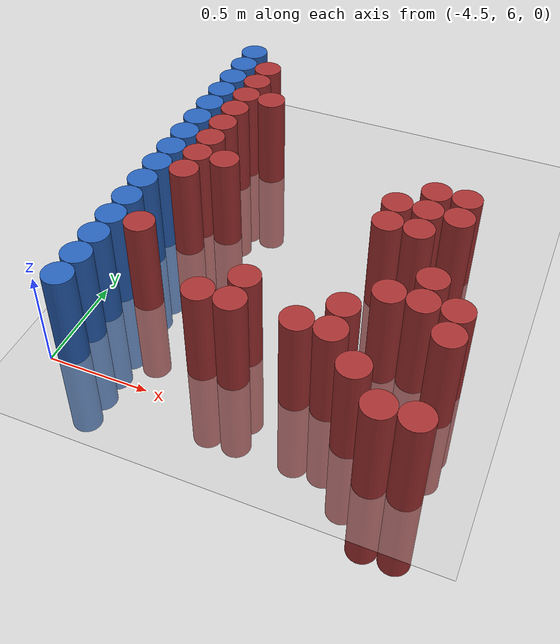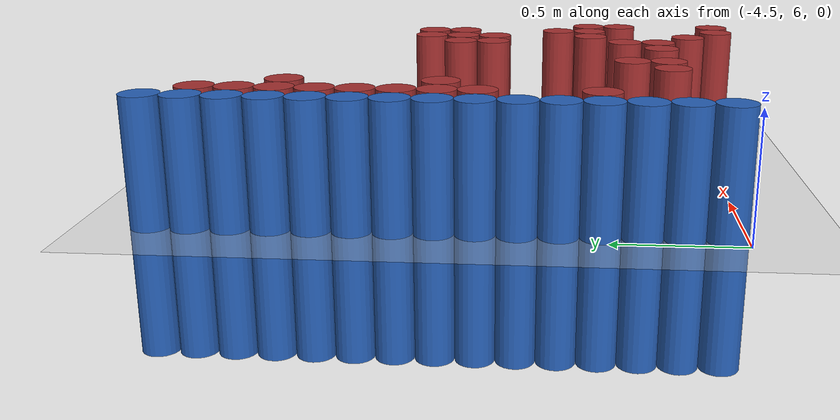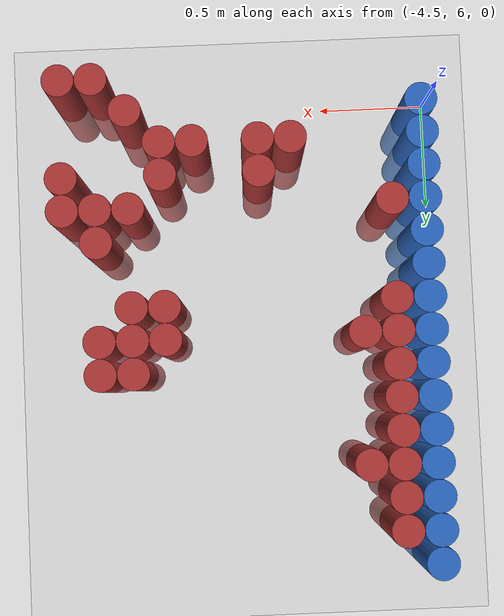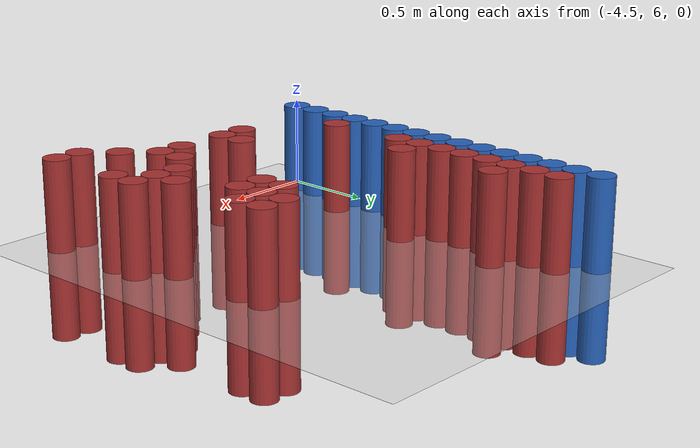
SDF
<sdf version="1.6">
 <world name="default">
  <model name="ground_plane">
   <static>1</static>
   <link name="link">
    <collision name="collision">
     <geometry><plane><normal>0 0 1</normal><size>100 100</size></plane></geometry>
     <surface><friction><ode><mu>100</mu><mu2>50</mu2></ode></friction></surface>
    </collision>
    <visual name="visual">
     <cast_shadows>0</cast_shadows>
     <geometry><plane><normal>0 0 1</normal><size>100 100</size></plane></geometry>
     <material>
      <script><uri>file://media/materials/scripts/gazebo.material</uri><name>Gazebo/Grey</name></script>
     </material>
    </visual>
   </link>
  </model>
  <model name="unit_cylinder_102">
   <static>1</static>
   <pose>-4.425000 6.075000 0.000000 0.000000 0.000000 0.000000</pose>
   <link name="link">
    <inertial>
     <mass>1</mass>
     <inertia><ixx>0.145833</ixx><ixy>0</ixy><ixz>0</ixz><iyy>0.145833</iyy><iyz>0</iyz><izz>0.125</izz></inertia>
    </inertial>
    <collision name="collision">
     <geometry><cylinder><radius>0.075000</radius><length>1</length></cylinder></geometry>
    </collision>
    <visual name="visual">
     <geometry><cylinder><radius>0.075000</radius><length>1</length></cylinder></geometry>
     <material>
      <ambient>0.152000 0.379000 0.720000 1</ambient>
      <diffuse>0.152000 0.379000 0.720000 1</diffuse>
     </material>
     <material>
      <script><name>Gazebo/Grey</name><uri>file://media/materials/scripts/gazebo.material</uri></script>
     </material>
    </visual>
   </link>
  </model>
  <model name="unit_cylinder_103">
   <static>1</static>
   <pose>-4.425000 6.225000 0.000000 0.000000 0.000000 0.000000</pose>
   <link name="link">
    <inertial>
     <mass>1</mass>
     <inertia><ixx>0.145833</ixx><ixy>0</ixy><ixz>0</ixz><iyy>0.145833</iyy><iyz>0</iyz><izz>0.125</izz></inertia>
    </inertial>
    <collision name="collision">
     <geometry><cylinder><radius>0.075000</radius><length>1</length></cylinder></geometry>
    </collision>
    <visual name="visual">
     <geometry><cylinder><radius>0.075000</radius><length>1</length></cylinder></geometry>
     <material>
      <ambient>0.152000 0.379000 0.720000 1</ambient>
      <diffuse>0.152000 0.379000 0.720000 1</diffuse>
     </material>
     <material>
      <script><name>Gazebo/Grey</name><uri>file://media/materials/scripts/gazebo.material</uri></script>
     </material>
    </visual>
   </link>
  </model>
  <model name="unit_cylinder_104">
   <static>1</static>
   <pose>-4.425000 6.375000 0.000000 0.000000 0.000000 0.000000</pose>
   <link name="link">
    <inertial>
     <mass>1</mass>
     <inertia><ixx>0.145833</ixx><ixy>0</ixy><ixz>0</ixz><iyy>0.145833</iyy><iyz>0</iyz><izz>0.125</izz></inertia>
    </inertial>
    <collision name="collision">
     <geometry><cylinder><radius>0.075000</radius><length>1</length></cylinder></geometry>
    </collision>
    <visual name="visual">
     <geometry><cylinder><radius>0.075000</radius><length>1</length></cylinder></geometry>
     <material>
      <ambient>0.152000 0.379000 0.720000 1</ambient>
      <diffuse>0.152000 0.379000 0.720000 1</diffuse>
     </material>
     <material>
      <script><name>Gazebo/Grey</name><uri>file://media/materials/scripts/gazebo.material</uri></script>
     </material>
    </visual>
   </link>
  </model>
  <model name="unit_cylinder_105">
   <static>1</static>
   <pose>-4.425000 6.525000 0.000000 0.000000 0.000000 0.000000</pose>
   <link name="link">
    <inertial>
     <mass>1</mass>
     <inertia><ixx>0.145833</ixx><ixy>0</ixy><ixz>0</ixz><iyy>0.145833</iyy><iyz>0</iyz><izz>0.125</izz></inertia>
    </inertial>
    <collision name="collision">
     <geometry><cylinder><radius>0.075000</radius><length>1</length></cylinder></geometry>
    </collision>
    <visual name="visual">
     <geometry><cylinder><radius>0.075000</radius><length>1</length></cylinder></geometry>
     <material>
      <ambient>0.152000 0.379000 0.720000 1</ambient>
      <diffuse>0.152000 0.379000 0.720000 1</diffuse>
     </material>
     <material>
      <script><name>Gazebo/Grey</name><uri>file://media/materials/scripts/gazebo.material</uri></script>
     </material>
    </visual>
   </link>
  </model>
  <model name="unit_cylinder_106">
   <static>1</static>
   <pose>-4.425000 6.675000 0.000000 0.000000 0.000000 0.000000</pose>
   <link name="link">
    <inertial>
     <mass>1</mass>
     <inertia><ixx>0.145833</ixx><ixy>0</ixy><ixz>0</ixz><iyy>0.145833</iyy><iyz>0</iyz><izz>0.125</izz></inertia>
    </inertial>
    <collision name="collision">
     <geometry><cylinder><radius>0.075000</radius><length>1</length></cylinder></geometry>
    </collision>
    <visual name="visual">
     <geometry><cylinder><radius>0.075000</radius><length>1</length></cylinder></geometry>
     <material>
      <ambient>0.152000 0.379000 0.720000 1</ambient>
      <diffuse>0.152000 0.379000 0.720000 1</diffuse>
     </material>
     <material>
      <script><name>Gazebo/Grey</name><uri>file://media/materials/scripts/gazebo.material</uri></script>
     </material>
    </visual>
   </link>
  </model>
  <model name="unit_cylinder_107">
   <static>1</static>
   <pose>-4.425000 6.825000 0.000000 0.000000 0.000000 0.000000</pose>
   <link name="link">
    <inertial>
     <mass>1</mass>
     <inertia><ixx>0.145833</ixx><ixy>0</ixy><ixz>0</ixz><iyy>0.145833</iyy><iyz>0</iyz><izz>0.125</izz></inertia>
    </inertial>
    <collision name="collision">
     <geometry><cylinder><radius>0.075000</radius><length>1</length></cylinder></geometry>
    </collision>
    <visual name="visual">
     <geometry><cylinder><radius>0.075000</radius><length>1</length></cylinder></geometry>
     <material>
      <ambient>0.152000 0.379000 0.720000 1</ambient>
      <diffuse>0.152000 0.379000 0.720000 1</diffuse>
     </material>
     <material>
      <script><name>Gazebo/Grey</name><uri>file://media/materials/scripts/gazebo.material</uri></script>
     </material>
    </visual>
   </link>
  </model>
  <model name="unit_cylinder_108">
   <static>1</static>
   <pose>-4.425000 6.975000 0.000000 0.000000 0.000000 0.000000</pose>
   <link name="link">
    <inertial>
     <mass>1</mass>
     <inertia><ixx>0.145833</ixx><ixy>0</ixy><ixz>0</ixz><iyy>0.145833</iyy><iyz>0</iyz><izz>0.125</izz></inertia>
    </inertial>
    <collision name="collision">
     <geometry><cylinder><radius>0.075000</radius><length>1</length></cylinder></geometry>
    </collision>
    <visual name="visual">
     <geometry><cylinder><radius>0.075000</radius><length>1</length></cylinder></geometry>
     <material>
      <ambient>0.152000 0.379000 0.720000 1</ambient>
      <diffuse>0.152000 0.379000 0.720000 1</diffuse>
     </material>
     <material>
      <script><name>Gazebo/Grey</name><uri>file://media/materials/scripts/gazebo.material</uri></script>
     </material>
    </visual>
   </link>
  </model>
  <model name="unit_cylinder_109">
   <static>1</static>
   <pose>-4.425000 7.125000 0.000000 0.000000 0.000000 0.000000</pose>
   <link name="link">
    <inertial>
     <mass>1</mass>
     <inertia><ixx>0.145833</ixx><ixy>0</ixy><ixz>0</ixz><iyy>0.145833</iyy><iyz>0</iyz><izz>0.125</izz></inertia>
    </inertial>
    <collision name="collision">
     <geometry><cylinder><radius>0.075000</radius><length>1</length></cylinder></geometry>
    </collision>
    <visual name="visual">
     <geometry><cylinder><radius>0.075000</radius><length>1</length></cylinder></geometry>
     <material>
      <ambient>0.152000 0.379000 0.720000 1</ambient>
      <diffuse>0.152000 0.379000 0.720000 1</diffuse>
     </material>
     <material>
      <script><name>Gazebo/Grey</name><uri>file://media/materials/scripts/gazebo.material</uri></script>
     </material>
    </visual>
   </link>
  </model>
  <model name="unit_cylinder_110">
   <static>1</static>
   <pose>-4.425000 7.275000 0.000000 0.000000 0.000000 0.000000</pose>
   <link name="link">
    <inertial>
     <mass>1</mass>
     <inertia><ixx>0.145833</ixx><ixy>0</ixy><ixz>0</ixz><iyy>0.145833</iyy><iyz>0</iyz><izz>0.125</izz></inertia>
    </inertial>
    <collision name="collision">
     <geometry><cylinder><radius>0.075000</radius><length>1</length></cylinder></geometry>
    </collision>
    <visual name="visual">
     <geometry><cylinder><radius>0.075000</radius><length>1</length></cylinder></geometry>
     <material>
      <ambient>0.152000 0.379000 0.720000 1</ambient>
      <diffuse>0.152000 0.379000 0.720000 1</diffuse>
     </material>
     <material>
      <script><name>Gazebo/Grey</name><uri>file://media/materials/scripts/gazebo.material</uri></script>
     </material>
    </visual>
   </link>
  </model>
  <model name="unit_cylinder_111">
   <static>1</static>
   <pose>-4.425000 7.425000 0.000000 0.000000 0.000000 0.000000</pose>
   <link name="link">
    <inertial>
     <mass>1</mass>
     <inertia><ixx>0.145833</ixx><ixy>0</ixy><ixz>0</ixz><iyy>0.145833</iyy><iyz>0</iyz><izz>0.125</izz></inertia>
    </inertial>
    <collision name="collision">
     <geometry><cylinder><radius>0.075000</radius><length>1</length></cylinder></geometry>
    </collision>
    <visual name="visual">
     <geometry><cylinder><radius>0.075000</radius><length>1</length></cylinder></geometry>
     <material>
      <ambient>0.152000 0.379000 0.720000 1</ambient>
      <diffuse>0.152000 0.379000 0.720000 1</diffuse>
     </material>
     <material>
      <script><name>Gazebo/Grey</name><uri>file://media/materials/scripts/gazebo.material</uri></script>
     </material>
    </visual>
   </link>
  </model>
  <model name="unit_cylinder_112">
   <static>1</static>
   <pose>-4.425000 7.575000 0.000000 0.000000 0.000000 0.000000</pose>
   <link name="link">
    <inertial>
     <mass>1</mass>
     <inertia><ixx>0.145833</ixx><ixy>0</ixy><ixz>0</ixz><iyy>0.145833</iyy><iyz>0</iyz><izz>0.125</izz></inertia>
    </inertial>
    <collision name="collision">
     <geometry><cylinder><radius>0.075000</radius><length>1</length></cylinder></geometry>
    </collision>
    <visual name="visual">
     <geometry><cylinder><radius>0.075000</radius><length>1</length></cylinder></geometry>
     <material>
      <ambient>0.152000 0.379000 0.720000 1</ambient>
      <diffuse>0.152000 0.379000 0.720000 1</diffuse>
     </material>
     <material>
      <script><name>Gazebo/Grey</name><uri>file://media/materials/scripts/gazebo.material</uri></script>
     </material>
    </visual>
   </link>
  </model>
  <model name="unit_cylinder_113">
   <static>1</static>
   <pose>-4.425000 7.725000 0.000000 0.000000 0.000000 0.000000</pose>
   <link name="link">
    <inertial>
     <mass>1</mass>
     <inertia><ixx>0.145833</ixx><ixy>0</ixy><ixz>0</ixz><iyy>0.145833</iyy><iyz>0</iyz><izz>0.125</izz></inertia>
    </inertial>
    <collision name="collision">
     <geometry><cylinder><radius>0.075000</radius><length>1</length></cylinder></geometry>
    </collision>
    <visual name="visual">
     <geometry><cylinder><radius>0.075000</radius><length>1</length></cylinder></geometry>
     <material>
      <ambient>0.152000 0.379000 0.720000 1</ambient>
      <diffuse>0.152000 0.379000 0.720000 1</diffuse>
     </material>
     <material>
      <script><name>Gazebo/Grey</name><uri>file://media/materials/scripts/gazebo.material</uri></script>
     </material>
    </visual>
   </link>
  </model>
  <model name="unit_cylinder_114">
   <static>1</static>
   <pose>-4.425000 7.875000 0.000000 0.000000 0.000000 0.000000</pose>
   <link name="link">
    <inertial>
     <mass>1</mass>
     <inertia><ixx>0.145833</ixx><ixy>0</ixy><ixz>0</ixz><iyy>0.145833</iyy><iyz>0</iyz><izz>0.125</izz></inertia>
    </inertial>
    <collision name="collision">
     <geometry><cylinder><radius>0.075000</radius><length>1</length></cylinder></geometry>
    </collision>
    <visual name="visual">
     <geometry><cylinder><radius>0.075000</radius><length>1</length></cylinder></geometry>
     <material>
      <ambient>0.152000 0.379000 0.720000 1</ambient>
      <diffuse>0.152000 0.379000 0.720000 1</diffuse>
     </material>
     <material>
      <script><name>Gazebo/Grey</name><uri>file://media/materials/scripts/gazebo.material</uri></script>
     </material>
    </visual>
   </link>
  </model>
  <model name="unit_cylinder_115">
   <static>1</static>
   <pose>-4.425000 8.025000 0.000000 0.000000 0.000000 0.000000</pose>
   <link name="link">
    <inertial>
     <mass>1</mass>
     <inertia><ixx>0.145833</ixx><ixy>0</ixy><ixz>0</ixz><iyy>0.145833</iyy><iyz>0</iyz><izz>0.125</izz></inertia>
    </inertial>
    <collision name="collision">
     <geometry><cylinder><radius>0.075000</radius><length>1</length></cylinder></geometry>
    </collision>
    <visual name="visual">
     <geometry><cylinder><radius>0.075000</radius><length>1</length></cylinder></geometry>
     <material>
      <ambient>0.152000 0.379000 0.720000 1</ambient>
      <diffuse>0.152000 0.379000 0.720000 1</diffuse>
     </material>
     <material>
      <script><name>Gazebo/Grey</name><uri>file://media/materials/scripts/gazebo.material</uri></script>
     </material>
    </visual>
   </link>
  </model>
  <model name="unit_cylinder_116">
   <static>1</static>
   <pose>-4.425000 8.175000 0.000000 0.000000 0.000000 0.000000</pose>
   <link name="link">
    <inertial>
     <mass>1</mass>
     <inertia><ixx>0.145833</ixx><ixy>0</ixy><ixz>0</ixz><iyy>0.145833</iyy><iyz>0</iyz><izz>0.125</izz></inertia>
    </inertial>
    <collision name="collision">
     <geometry><cylinder><radius>0.075000</radius><length>1</length></cylinder></geometry>
    </collision>
    <visual name="visual">
     <geometry><cylinder><radius>0.075000</radius><length>1</length></cylinder></geometry>
     <material>
      <ambient>0.152000 0.379000 0.720000 1</ambient>
      <diffuse>0.152000 0.379000 0.720000 1</diffuse>
     </material>
     <material>
      <script><name>Gazebo/Grey</name><uri>file://media/materials/scripts/gazebo.material</uri></script>
     </material>
    </visual>
   </link>
  </model>
  <model name="unit_cylinder_131">
   <static>1</static>
   <pose>-4.275000 6.525000 0.000000 0.000000 0.000000 0.000000</pose>
   <link name="link">
    <inertial>
     <mass>1</mass>
     <inertia><ixx>0.145833</ixx><ixy>0</ixy><ixz>0</ixz><iyy>0.145833</iyy><iyz>0</iyz><izz>0.125</izz></inertia>
    </inertial>
    <collision name="collision">
     <geometry><cylinder><radius>0.075000</radius><length>1</length></cylinder></geometry>
    </collision>
    <visual name="visual">
     <geometry><cylinder><radius>0.075000</radius><length>1</length></cylinder></geometry>
     <material>
      <ambient>0.648000 0.192000 0.192000 1</ambient>
      <diffuse>0.648000 0.192000 0.192000 1</diffuse>
     </material>
     <material>
      <script><name>Gazebo/Grey</name><uri>file://media/materials/scripts/gazebo.material</uri></script>
     </material>
    </visual>
   </link>
  </model>
  <model name="unit_cylinder_132">
   <static>1</static>
   <pose>-4.275000 6.975000 0.000000 0.000000 0.000000 0.000000</pose>
   <link name="link">
    <inertial>
     <mass>1</mass>
     <inertia><ixx>0.145833</ixx><ixy>0</ixy><ixz>0</ixz><iyy>0.145833</iyy><iyz>0</iyz><izz>0.125</izz></inertia>
    </inertial>
    <collision name="collision">
     <geometry><cylinder><radius>0.075000</radius><length>1</length></cylinder></geometry>
    </collision>
    <visual name="visual">
     <geometry><cylinder><radius>0.075000</radius><length>1</length></cylinder></geometry>
     <material>
      <ambient>0.648000 0.192000 0.192000 1</ambient>
      <diffuse>0.648000 0.192000 0.192000 1</diffuse>
     </material>
     <material>
      <script><name>Gazebo/Grey</name><uri>file://media/materials/scripts/gazebo.material</uri></script>
     </material>
    </visual>
   </link>
  </model>
  <model name="unit_cylinder_133">
   <static>1</static>
   <pose>-4.275000 7.125000 0.000000 0.000000 0.000000 0.000000</pose>
   <link name="link">
    <inertial>
     <mass>1</mass>
     <inertia><ixx>0.145833</ixx><ixy>0</ixy><ixz>0</ixz><iyy>0.145833</iyy><iyz>0</iyz><izz>0.125</izz></inertia>
    </inertial>
    <collision name="collision">
     <geometry><cylinder><radius>0.075000</radius><length>1</length></cylinder></geometry>
    </collision>
    <visual name="visual">
     <geometry><cylinder><radius>0.075000</radius><length>1</length></cylinder></geometry>
     <material>
      <ambient>0.648000 0.192000 0.192000 1</ambient>
      <diffuse>0.648000 0.192000 0.192000 1</diffuse>
     </material>
     <material>
      <script><name>Gazebo/Grey</name><uri>file://media/materials/scripts/gazebo.material</uri></script>
     </material>
    </visual>
   </link>
  </model>
  <model name="unit_cylinder_134">
   <static>1</static>
   <pose>-4.275000 7.275000 0.000000 0.000000 0.000000 0.000000</pose>
   <link name="link">
    <inertial>
     <mass>1</mass>
     <inertia><ixx>0.145833</ixx><ixy>0</ixy><ixz>0</ixz><iyy>0.145833</iyy><iyz>0</iyz><izz>0.125</izz></inertia>
    </inertial>
    <collision name="collision">
     <geometry><cylinder><radius>0.075000</radius><length>1</length></cylinder></geometry>
    </collision>
    <visual name="visual">
     <geometry><cylinder><radius>0.075000</radius><length>1</length></cylinder></geometry>
     <material>
      <ambient>0.648000 0.192000 0.192000 1</ambient>
      <diffuse>0.648000 0.192000 0.192000 1</diffuse>
     </material>
     <material>
      <script><name>Gazebo/Grey</name><uri>file://media/materials/scripts/gazebo.material</uri></script>
     </material>
    </visual>
   </link>
  </model>
  <model name="unit_cylinder_135">
   <static>1</static>
   <pose>-4.275000 7.425000 0.000000 0.000000 0.000000 0.000000</pose>
   <link name="link">
    <inertial>
     <mass>1</mass>
     <inertia><ixx>0.145833</ixx><ixy>0</ixy><ixz>0</ixz><iyy>0.145833</iyy><iyz>0</iyz><izz>0.125</izz></inertia>
    </inertial>
    <collision name="collision">
     <geometry><cylinder><radius>0.075000</radius><length>1</length></cylinder></geometry>
    </collision>
    <visual name="visual">
     <geometry><cylinder><radius>0.075000</radius><length>1</length></cylinder></geometry>
     <material>
      <ambient>0.648000 0.192000 0.192000 1</ambient>
      <diffuse>0.648000 0.192000 0.192000 1</diffuse>
     </material>
     <material>
      <script><name>Gazebo/Grey</name><uri>file://media/materials/scripts/gazebo.material</uri></script>
     </material>
    </visual>
   </link>
  </model>
  <model name="unit_cylinder_136">
   <static>1</static>
   <pose>-4.275000 7.575000 0.000000 0.000000 0.000000 0.000000</pose>
   <link name="link">
    <inertial>
     <mass>1</mass>
     <inertia><ixx>0.145833</ixx><ixy>0</ixy><ixz>0</ixz><iyy>0.145833</iyy><iyz>0</iyz><izz>0.125</izz></inertia>
    </inertial>
    <collision name="collision">
     <geometry><cylinder><radius>0.075000</radius><length>1</length></cylinder></geometry>
    </collision>
    <visual name="visual">
     <geometry><cylinder><radius>0.075000</radius><length>1</length></cylinder></geometry>
     <material>
      <ambient>0.648000 0.192000 0.192000 1</ambient>
      <diffuse>0.648000 0.192000 0.192000 1</diffuse>
     </material>
     <material>
      <script><name>Gazebo/Grey</name><uri>file://media/materials/scripts/gazebo.material</uri></script>
     </material>
    </visual>
   </link>
  </model>
  <model name="unit_cylinder_137">
   <static>1</static>
   <pose>-4.275000 7.725000 0.000000 0.000000 0.000000 0.000000</pose>
   <link name="link">
    <inertial>
     <mass>1</mass>
     <inertia><ixx>0.145833</ixx><ixy>0</ixy><ixz>0</ixz><iyy>0.145833</iyy><iyz>0</iyz><izz>0.125</izz></inertia>
    </inertial>
    <collision name="collision">
     <geometry><cylinder><radius>0.075000</radius><length>1</length></cylinder></geometry>
    </collision>
    <visual name="visual">
     <geometry><cylinder><radius>0.075000</radius><length>1</length></cylinder></geometry>
     <material>
      <ambient>0.648000 0.192000 0.192000 1</ambient>
      <diffuse>0.648000 0.192000 0.192000 1</diffuse>
     </material>
     <material>
      <script><name>Gazebo/Grey</name><uri>file://media/materials/scripts/gazebo.material</uri></script>
     </material>
    </visual>
   </link>
  </model>
  <model name="unit_cylinder_138">
   <static>1</static>
   <pose>-4.275000 7.875000 0.000000 0.000000 0.000000 0.000000</pose>
   <link name="link">
    <inertial>
     <mass>1</mass>
     <inertia><ixx>0.145833</ixx><ixy>0</ixy><ixz>0</ixz><iyy>0.145833</iyy><iyz>0</iyz><izz>0.125</izz></inertia>
    </inertial>
    <collision name="collision">
     <geometry><cylinder><radius>0.075000</radius><length>1</length></cylinder></geometry>
    </collision>
    <visual name="visual">
     <geometry><cylinder><radius>0.075000</radius><length>1</length></cylinder></geometry>
     <material>
      <ambient>0.648000 0.192000 0.192000 1</ambient>
      <diffuse>0.648000 0.192000 0.192000 1</diffuse>
     </material>
     <material>
      <script><name>Gazebo/Grey</name><uri>file://media/materials/scripts/gazebo.material</uri></script>
     </material>
    </visual>
   </link>
  </model>
  <model name="unit_cylinder_139">
   <static>1</static>
   <pose>-4.275000 8.025000 0.000000 0.000000 0.000000 0.000000</pose>
   <link name="link">
    <inertial>
     <mass>1</mass>
     <inertia><ixx>0.145833</ixx><ixy>0</ixy><ixz>0</ixz><iyy>0.145833</iyy><iyz>0</iyz><izz>0.125</izz></inertia>
    </inertial>
    <collision name="collision">
     <geometry><cylinder><radius>0.075000</radius><length>1</length></cylinder></geometry>
    </collision>
    <visual name="visual">
     <geometry><cylinder><radius>0.075000</radius><length>1</length></cylinder></geometry>
     <material>
      <ambient>0.648000 0.192000 0.192000 1</ambient>
      <diffuse>0.648000 0.192000 0.192000 1</diffuse>
     </material>
     <material>
      <script><name>Gazebo/Grey</name><uri>file://media/materials/scripts/gazebo.material</uri></script>
     </material>
    </visual>
   </link>
  </model>
  <model name="unit_cylinder_149">
   <static>1</static>
   <pose>-4.125000 7.125000 0.000000 0.000000 0.000000 0.000000</pose>
   <link name="link">
    <inertial>
     <mass>1</mass>
     <inertia><ixx>0.145833</ixx><ixy>0</ixy><ixz>0</ixz><iyy>0.145833</iyy><iyz>0</iyz><izz>0.125</izz></inertia>
    </inertial>
    <collision name="collision">
     <geometry><cylinder><radius>0.075000</radius><length>1</length></cylinder></geometry>
    </collision>
    <visual name="visual">
     <geometry><cylinder><radius>0.075000</radius><length>1</length></cylinder></geometry>
     <material>
      <ambient>0.648000 0.192000 0.192000 1</ambient>
      <diffuse>0.648000 0.192000 0.192000 1</diffuse>
     </material>
     <material>
      <script><name>Gazebo/Grey</name><uri>file://media/materials/scripts/gazebo.material</uri></script>
     </material>
    </visual>
   </link>
  </model>
  <model name="unit_cylinder_150">
   <static>1</static>
   <pose>-4.125000 7.725000 0.000000 0.000000 0.000000 0.000000</pose>
   <link name="link">
    <inertial>
     <mass>1</mass>
     <inertia><ixx>0.145833</ixx><ixy>0</ixy><ixz>0</ixz><iyy>0.145833</iyy><iyz>0</iyz><izz>0.125</izz></inertia>
    </inertial>
    <collision name="collision">
     <geometry><cylinder><radius>0.075000</radius><length>1</length></cylinder></geometry>
    </collision>
    <visual name="visual">
     <geometry><cylinder><radius>0.075000</radius><length>1</length></cylinder></geometry>
     <material>
      <ambient>0.648000 0.192000 0.192000 1</ambient>
      <diffuse>0.648000 0.192000 0.192000 1</diffuse>
     </material>
     <material>
      <script><name>Gazebo/Grey</name><uri>file://media/materials/scripts/gazebo.material</uri></script>
     </material>
    </visual>
   </link>
  </model>
  <model name="unit_cylinder_158">
   <static>1</static>
   <pose>-3.825000 6.225000 0.000000 0.000000 0.000000 0.000000</pose>
   <link name="link">
    <inertial>
     <mass>1</mass>
     <inertia><ixx>0.145833</ixx><ixy>0</ixy><ixz>0</ixz><iyy>0.145833</iyy><iyz>0</iyz><izz>0.125</izz></inertia>
    </inertial>
    <collision name="collision">
     <geometry><cylinder><radius>0.075000</radius><length>1</length></cylinder></geometry>
    </collision>
    <visual name="visual">
     <geometry><cylinder><radius>0.075000</radius><length>1</length></cylinder></geometry>
     <material>
      <ambient>0.648000 0.192000 0.192000 1</ambient>
      <diffuse>0.648000 0.192000 0.192000 1</diffuse>
     </material>
     <material>
      <script><name>Gazebo/Grey</name><uri>file://media/materials/scripts/gazebo.material</uri></script>
     </material>
    </visual>
   </link>
  </model>
  <model name="unit_cylinder_165">
   <static>1</static>
   <pose>-3.675000 6.225000 0.000000 0.000000 0.000000 0.000000</pose>
   <link name="link">
    <inertial>
     <mass>1</mass>
     <inertia><ixx>0.145833</ixx><ixy>0</ixy><ixz>0</ixz><iyy>0.145833</iyy><iyz>0</iyz><izz>0.125</izz></inertia>
    </inertial>
    <collision name="collision">
     <geometry><cylinder><radius>0.075000</radius><length>1</length></cylinder></geometry>
    </collision>
    <visual name="visual">
     <geometry><cylinder><radius>0.075000</radius><length>1</length></cylinder></geometry>
     <material>
      <ambient>0.648000 0.192000 0.192000 1</ambient>
      <diffuse>0.648000 0.192000 0.192000 1</diffuse>
     </material>
     <material>
      <script><name>Gazebo/Grey</name><uri>file://media/materials/scripts/gazebo.material</uri></script>
     </material>
    </visual>
   </link>
  </model>
  <model name="unit_cylinder_166">
   <static>1</static>
   <pose>-3.675000 6.375000 0.000000 0.000000 0.000000 0.000000</pose>
   <link name="link">
    <inertial>
     <mass>1</mass>
     <inertia><ixx>0.145833</ixx><ixy>0</ixy><ixz>0</ixz><iyy>0.145833</iyy><iyz>0</iyz><izz>0.125</izz></inertia>
    </inertial>
    <collision name="collision">
     <geometry><cylinder><radius>0.075000</radius><length>1</length></cylinder></geometry>
    </collision>
    <visual name="visual">
     <geometry><cylinder><radius>0.075000</radius><length>1</length></cylinder></geometry>
     <material>
      <ambient>0.648000 0.192000 0.192000 1</ambient>
      <diffuse>0.648000 0.192000 0.192000 1</diffuse>
     </material>
     <material>
      <script><name>Gazebo/Grey</name><uri>file://media/materials/scripts/gazebo.material</uri></script>
     </material>
    </visual>
   </link>
  </model>
  <model name="unit_cylinder_182">
   <static>1</static>
   <pose>-3.375000 6.225000 0.000000 0.000000 0.000000 0.000000</pose>
   <link name="link">
    <inertial>
     <mass>1</mass>
     <inertia><ixx>0.145833</ixx><ixy>0</ixy><ixz>0</ixz><iyy>0.145833</iyy><iyz>0</iyz><izz>0.125</izz></inertia>
    </inertial>
    <collision name="collision">
     <geometry><cylinder><radius>0.075000</radius><length>1</length></cylinder></geometry>
    </collision>
    <visual name="visual">
     <geometry><cylinder><radius>0.075000</radius><length>1</length></cylinder></geometry>
     <material>
      <ambient>0.648000 0.192000 0.192000 1</ambient>
      <diffuse>0.648000 0.192000 0.192000 1</diffuse>
     </material>
     <material>
      <script><name>Gazebo/Grey</name><uri>file://media/materials/scripts/gazebo.material</uri></script>
     </material>
    </visual>
   </link>
  </model>
  <model name="unit_cylinder_191">
   <static>1</static>
   <pose>-3.225000 6.225000 0.000000 0.000000 0.000000 0.000000</pose>
   <link name="link">
    <inertial>
     <mass>1</mass>
     <inertia><ixx>0.145833</ixx><ixy>0</ixy><ixz>0</ixz><iyy>0.145833</iyy><iyz>0</iyz><izz>0.125</izz></inertia>
    </inertial>
    <collision name="collision">
     <geometry><cylinder><radius>0.075000</radius><length>1</length></cylinder></geometry>
    </collision>
    <visual name="visual">
     <geometry><cylinder><radius>0.075000</radius><length>1</length></cylinder></geometry>
     <material>
      <ambient>0.648000 0.192000 0.192000 1</ambient>
      <diffuse>0.648000 0.192000 0.192000 1</diffuse>
     </material>
     <material>
      <script><name>Gazebo/Grey</name><uri>file://media/materials/scripts/gazebo.material</uri></script>
     </material>
    </visual>
   </link>
  </model>
  <model name="unit_cylinder_192">
   <static>1</static>
   <pose>-3.225000 6.375000 0.000000 0.000000 0.000000 0.000000</pose>
   <link name="link">
    <inertial>
     <mass>1</mass>
     <inertia><ixx>0.145833</ixx><ixy>0</ixy><ixz>0</ixz><iyy>0.145833</iyy><iyz>0</iyz><izz>0.125</izz></inertia>
    </inertial>
    <collision name="collision">
     <geometry><cylinder><radius>0.075000</radius><length>1</length></cylinder></geometry>
    </collision>
    <visual name="visual">
     <geometry><cylinder><radius>0.075000</radius><length>1</length></cylinder></geometry>
     <material>
      <ambient>0.648000 0.192000 0.192000 1</ambient>
      <diffuse>0.648000 0.192000 0.192000 1</diffuse>
     </material>
     <material>
      <script><name>Gazebo/Grey</name><uri>file://media/materials/scripts/gazebo.material</uri></script>
     </material>
    </visual>
   </link>
  </model>
  <model name="unit_cylinder_193">
   <static>1</static>
   <pose>-3.225000 6.975000 0.000000 0.000000 0.000000 0.000000</pose>
   <link name="link">
    <inertial>
     <mass>1</mass>
     <inertia><ixx>0.145833</ixx><ixy>0</ixy><ixz>0</ixz><iyy>0.145833</iyy><iyz>0</iyz><izz>0.125</izz></inertia>
    </inertial>
    <collision name="collision">
     <geometry><cylinder><radius>0.075000</radius><length>1</length></cylinder></geometry>
    </collision>
    <visual name="visual">
     <geometry><cylinder><radius>0.075000</radius><length>1</length></cylinder></geometry>
     <material>
      <ambient>0.648000 0.192000 0.192000 1</ambient>
      <diffuse>0.648000 0.192000 0.192000 1</diffuse>
     </material>
     <material>
      <script><name>Gazebo/Grey</name><uri>file://media/materials/scripts/gazebo.material</uri></script>
     </material>
    </visual>
   </link>
  </model>
  <model name="unit_cylinder_194">
   <static>1</static>
   <pose>-3.225000 7.125000 0.000000 0.000000 0.000000 0.000000</pose>
   <link name="link">
    <inertial>
     <mass>1</mass>
     <inertia><ixx>0.145833</ixx><ixy>0</ixy><ixz>0</ixz><iyy>0.145833</iyy><iyz>0</iyz><izz>0.125</izz></inertia>
    </inertial>
    <collision name="collision">
     <geometry><cylinder><radius>0.075000</radius><length>1</length></cylinder></geometry>
    </collision>
    <visual name="visual">
     <geometry><cylinder><radius>0.075000</radius><length>1</length></cylinder></geometry>
     <material>
      <ambient>0.648000 0.192000 0.192000 1</ambient>
      <diffuse>0.648000 0.192000 0.192000 1</diffuse>
     </material>
     <material>
      <script><name>Gazebo/Grey</name><uri>file://media/materials/scripts/gazebo.material</uri></script>
     </material>
    </visual>
   </link>
  </model>
  <model name="unit_cylinder_204">
   <static>1</static>
   <pose>-3.075000 6.075000 0.000000 0.000000 0.000000 0.000000</pose>
   <link name="link">
    <inertial>
     <mass>1</mass>
     <inertia><ixx>0.145833</ixx><ixy>0</ixy><ixz>0</ixz><iyy>0.145833</iyy><iyz>0</iyz><izz>0.125</izz></inertia>
    </inertial>
    <collision name="collision">
     <geometry><cylinder><radius>0.075000</radius><length>1</length></cylinder></geometry>
    </collision>
    <visual name="visual">
     <geometry><cylinder><radius>0.075000</radius><length>1</length></cylinder></geometry>
     <material>
      <ambient>0.648000 0.192000 0.192000 1</ambient>
      <diffuse>0.648000 0.192000 0.192000 1</diffuse>
     </material>
     <material>
      <script><name>Gazebo/Grey</name><uri>file://media/materials/scripts/gazebo.material</uri></script>
     </material>
    </visual>
   </link>
  </model>
  <model name="unit_cylinder_205">
   <static>1</static>
   <pose>-3.075000 6.525000 0.000000 0.000000 0.000000 0.000000</pose>
   <link name="link">
    <inertial>
     <mass>1</mass>
     <inertia><ixx>0.145833</ixx><ixy>0</ixy><ixz>0</ixz><iyy>0.145833</iyy><iyz>0</iyz><izz>0.125</izz></inertia>
    </inertial>
    <collision name="collision">
     <geometry><cylinder><radius>0.075000</radius><length>1</length></cylinder></geometry>
    </collision>
    <visual name="visual">
     <geometry><cylinder><radius>0.075000</radius><length>1</length></cylinder></geometry>
     <material>
      <ambient>0.648000 0.192000 0.192000 1</ambient>
      <diffuse>0.648000 0.192000 0.192000 1</diffuse>
     </material>
     <material>
      <script><name>Gazebo/Grey</name><uri>file://media/materials/scripts/gazebo.material</uri></script>
     </material>
    </visual>
   </link>
  </model>
  <model name="unit_cylinder_206">
   <static>1</static>
   <pose>-3.075000 6.975000 0.000000 0.000000 0.000000 0.000000</pose>
   <link name="link">
    <inertial>
     <mass>1</mass>
     <inertia><ixx>0.145833</ixx><ixy>0</ixy><ixz>0</ixz><iyy>0.145833</iyy><iyz>0</iyz><izz>0.125</izz></inertia>
    </inertial>
    <collision name="collision">
     <geometry><cylinder><radius>0.075000</radius><length>1</length></cylinder></geometry>
    </collision>
    <visual name="visual">
     <geometry><cylinder><radius>0.075000</radius><length>1</length></cylinder></geometry>
     <material>
      <ambient>0.648000 0.192000 0.192000 1</ambient>
      <diffuse>0.648000 0.192000 0.192000 1</diffuse>
     </material>
     <material>
      <script><name>Gazebo/Grey</name><uri>file://media/materials/scripts/gazebo.material</uri></script>
     </material>
    </visual>
   </link>
  </model>
  <model name="unit_cylinder_207">
   <static>1</static>
   <pose>-3.075000 7.125000 0.000000 0.000000 0.000000 0.000000</pose>
   <link name="link">
    <inertial>
     <mass>1</mass>
     <inertia><ixx>0.145833</ixx><ixy>0</ixy><ixz>0</ixz><iyy>0.145833</iyy><iyz>0</iyz><izz>0.125</izz></inertia>
    </inertial>
    <collision name="collision">
     <geometry><cylinder><radius>0.075000</radius><length>1</length></cylinder></geometry>
    </collision>
    <visual name="visual">
     <geometry><cylinder><radius>0.075000</radius><length>1</length></cylinder></geometry>
     <material>
      <ambient>0.648000 0.192000 0.192000 1</ambient>
      <diffuse>0.648000 0.192000 0.192000 1</diffuse>
     </material>
     <material>
      <script><name>Gazebo/Grey</name><uri>file://media/materials/scripts/gazebo.material</uri></script>
     </material>
    </visual>
   </link>
  </model>
  <model name="unit_cylinder_208">
   <static>1</static>
   <pose>-3.075000 7.275000 0.000000 0.000000 0.000000 0.000000</pose>
   <link name="link">
    <inertial>
     <mass>1</mass>
     <inertia><ixx>0.145833</ixx><ixy>0</ixy><ixz>0</ixz><iyy>0.145833</iyy><iyz>0</iyz><izz>0.125</izz></inertia>
    </inertial>
    <collision name="collision">
     <geometry><cylinder><radius>0.075000</radius><length>1</length></cylinder></geometry>
    </collision>
    <visual name="visual">
     <geometry><cylinder><radius>0.075000</radius><length>1</length></cylinder></geometry>
     <material>
      <ambient>0.648000 0.192000 0.192000 1</ambient>
      <diffuse>0.648000 0.192000 0.192000 1</diffuse>
     </material>
     <material>
      <script><name>Gazebo/Grey</name><uri>file://media/materials/scripts/gazebo.material</uri></script>
     </material>
    </visual>
   </link>
  </model>
  <model name="unit_cylinder_212">
   <static>1</static>
   <pose>-2.925000 5.925000 0.000000 0.000000 0.000000 0.000000</pose>
   <link name="link">
    <inertial>
     <mass>1</mass>
     <inertia><ixx>0.145833</ixx><ixy>0</ixy><ixz>0</ixz><iyy>0.145833</iyy><iyz>0</iyz><izz>0.125</izz></inertia>
    </inertial>
    <collision name="collision">
     <geometry><cylinder><radius>0.075000</radius><length>1</length></cylinder></geometry>
    </collision>
    <visual name="visual">
     <geometry><cylinder><radius>0.075000</radius><length>1</length></cylinder></geometry>
     <material>
      <ambient>0.648000 0.192000 0.192000 1</ambient>
      <diffuse>0.648000 0.192000 0.192000 1</diffuse>
     </material>
     <material>
      <script><name>Gazebo/Grey</name><uri>file://media/materials/scripts/gazebo.material</uri></script>
     </material>
    </visual>
   </link>
  </model>
  <model name="unit_cylinder_213">
   <static>1</static>
   <pose>-2.925000 6.525000 0.000000 0.000000 0.000000 0.000000</pose>
   <link name="link">
    <inertial>
     <mass>1</mass>
     <inertia><ixx>0.145833</ixx><ixy>0</ixy><ixz>0</ixz><iyy>0.145833</iyy><iyz>0</iyz><izz>0.125</izz></inertia>
    </inertial>
    <collision name="collision">
     <geometry><cylinder><radius>0.075000</radius><length>1</length></cylinder></geometry>
    </collision>
    <visual name="visual">
     <geometry><cylinder><radius>0.075000</radius><length>1</length></cylinder></geometry>
     <material>
      <ambient>0.648000 0.192000 0.192000 1</ambient>
      <diffuse>0.648000 0.192000 0.192000 1</diffuse>
     </material>
     <material>
      <script><name>Gazebo/Grey</name><uri>file://media/materials/scripts/gazebo.material</uri></script>
     </material>
    </visual>
   </link>
  </model>
  <model name="unit_cylinder_214">
   <static>1</static>
   <pose>-2.925000 6.675000 0.000000 0.000000 0.000000 0.000000</pose>
   <link name="link">
    <inertial>
     <mass>1</mass>
     <inertia><ixx>0.145833</ixx><ixy>0</ixy><ixz>0</ixz><iyy>0.145833</iyy><iyz>0</iyz><izz>0.125</izz></inertia>
    </inertial>
    <collision name="collision">
     <geometry><cylinder><radius>0.075000</radius><length>1</length></cylinder></geometry>
    </collision>
    <visual name="visual">
     <geometry><cylinder><radius>0.075000</radius><length>1</length></cylinder></geometry>
     <material>
      <ambient>0.648000 0.192000 0.192000 1</ambient>
      <diffuse>0.648000 0.192000 0.192000 1</diffuse>
     </material>
     <material>
      <script><name>Gazebo/Grey</name><uri>file://media/materials/scripts/gazebo.material</uri></script>
     </material>
    </visual>
   </link>
  </model>
  <model name="unit_cylinder_215">
   <static>1</static>
   <pose>-2.925000 7.125000 0.000000 0.000000 0.000000 0.000000</pose>
   <link name="link">
    <inertial>
     <mass>1</mass>
     <inertia><ixx>0.145833</ixx><ixy>0</ixy><ixz>0</ixz><iyy>0.145833</iyy><iyz>0</iyz><izz>0.125</izz></inertia>
    </inertial>
    <collision name="collision">
     <geometry><cylinder><radius>0.075000</radius><length>1</length></cylinder></geometry>
    </collision>
    <visual name="visual">
     <geometry><cylinder><radius>0.075000</radius><length>1</length></cylinder></geometry>
     <material>
      <ambient>0.648000 0.192000 0.192000 1</ambient>
      <diffuse>0.648000 0.192000 0.192000 1</diffuse>
     </material>
     <material>
      <script><name>Gazebo/Grey</name><uri>file://media/materials/scripts/gazebo.material</uri></script>
     </material>
    </visual>
   </link>
  </model>
  <model name="unit_cylinder_216">
   <static>1</static>
   <pose>-2.925000 7.275000 0.000000 0.000000 0.000000 0.000000</pose>
   <link name="link">
    <inertial>
     <mass>1</mass>
     <inertia><ixx>0.145833</ixx><ixy>0</ixy><ixz>0</ixz><iyy>0.145833</iyy><iyz>0</iyz><izz>0.125</izz></inertia>
    </inertial>
    <collision name="collision">
     <geometry><cylinder><radius>0.075000</radius><length>1</length></cylinder></geometry>
    </collision>
    <visual name="visual">
     <geometry><cylinder><radius>0.075000</radius><length>1</length></cylinder></geometry>
     <material>
      <ambient>0.648000 0.192000 0.192000 1</ambient>
      <diffuse>0.648000 0.192000 0.192000 1</diffuse>
     </material>
     <material>
      <script><name>Gazebo/Grey</name><uri>file://media/materials/scripts/gazebo.material</uri></script>
     </material>
    </visual>
   </link>
  </model>
  <model name="unit_cylinder_218">
   <static>1</static>
   <pose>-2.775000 5.925000 0.000000 0.000000 0.000000 0.000000</pose>
   <link name="link">
    <inertial>
     <mass>1</mass>
     <inertia><ixx>0.145833</ixx><ixy>0</ixy><ixz>0</ixz><iyy>0.145833</iyy><iyz>0</iyz><izz>0.125</izz></inertia>
    </inertial>
    <collision name="collision">
     <geometry><cylinder><radius>0.075000</radius><length>1</length></cylinder></geometry>
    </collision>
    <visual name="visual">
     <geometry><cylinder><radius>0.075000</radius><length>1</length></cylinder></geometry>
     <material>
      <ambient>0.648000 0.192000 0.192000 1</ambient>
      <diffuse>0.648000 0.192000 0.192000 1</diffuse>
     </material>
     <material>
      <script><name>Gazebo/Grey</name><uri>file://media/materials/scripts/gazebo.material</uri></script>
     </material>
    </visual>
   </link>
  </model>
  <model name="unit_cylinder_219">
   <static>1</static>
   <pose>-2.775000 6.375000 0.000000 0.000000 0.000000 0.000000</pose>
   <link name="link">
    <inertial>
     <mass>1</mass>
     <inertia><ixx>0.145833</ixx><ixy>0</ixy><ixz>0</ixz><iyy>0.145833</iyy><iyz>0</iyz><izz>0.125</izz></inertia>
    </inertial>
    <collision name="collision">
     <geometry><cylinder><radius>0.075000</radius><length>1</length></cylinder></geometry>
    </collision>
    <visual name="visual">
     <geometry><cylinder><radius>0.075000</radius><length>1</length></cylinder></geometry>
     <material>
      <ambient>0.648000 0.192000 0.192000 1</ambient>
      <diffuse>0.648000 0.192000 0.192000 1</diffuse>
     </material>
     <material>
      <script><name>Gazebo/Grey</name><uri>file://media/materials/scripts/gazebo.material</uri></script>
     </material>
    </visual>
   </link>
  </model>
  <model name="unit_cylinder_220">
   <static>1</static>
   <pose>-2.775000 6.525000 0.000000 0.000000 0.000000 0.000000</pose>
   <link name="link">
    <inertial>
     <mass>1</mass>
     <inertia><ixx>0.145833</ixx><ixy>0</ixy><ixz>0</ixz><iyy>0.145833</iyy><iyz>0</iyz><izz>0.125</izz></inertia>
    </inertial>
    <collision name="collision">
     <geometry><cylinder><radius>0.075000</radius><length>1</length></cylinder></geometry>
    </collision>
    <visual name="visual">
     <geometry><cylinder><radius>0.075000</radius><length>1</length></cylinder></geometry>
     <material>
      <ambient>0.648000 0.192000 0.192000 1</ambient>
      <diffuse>0.648000 0.192000 0.192000 1</diffuse>
     </material>
     <material>
      <script><name>Gazebo/Grey</name><uri>file://media/materials/scripts/gazebo.material</uri></script>
     </material>
    </visual>
   </link>
  </model>
 </world>
</sdf>
